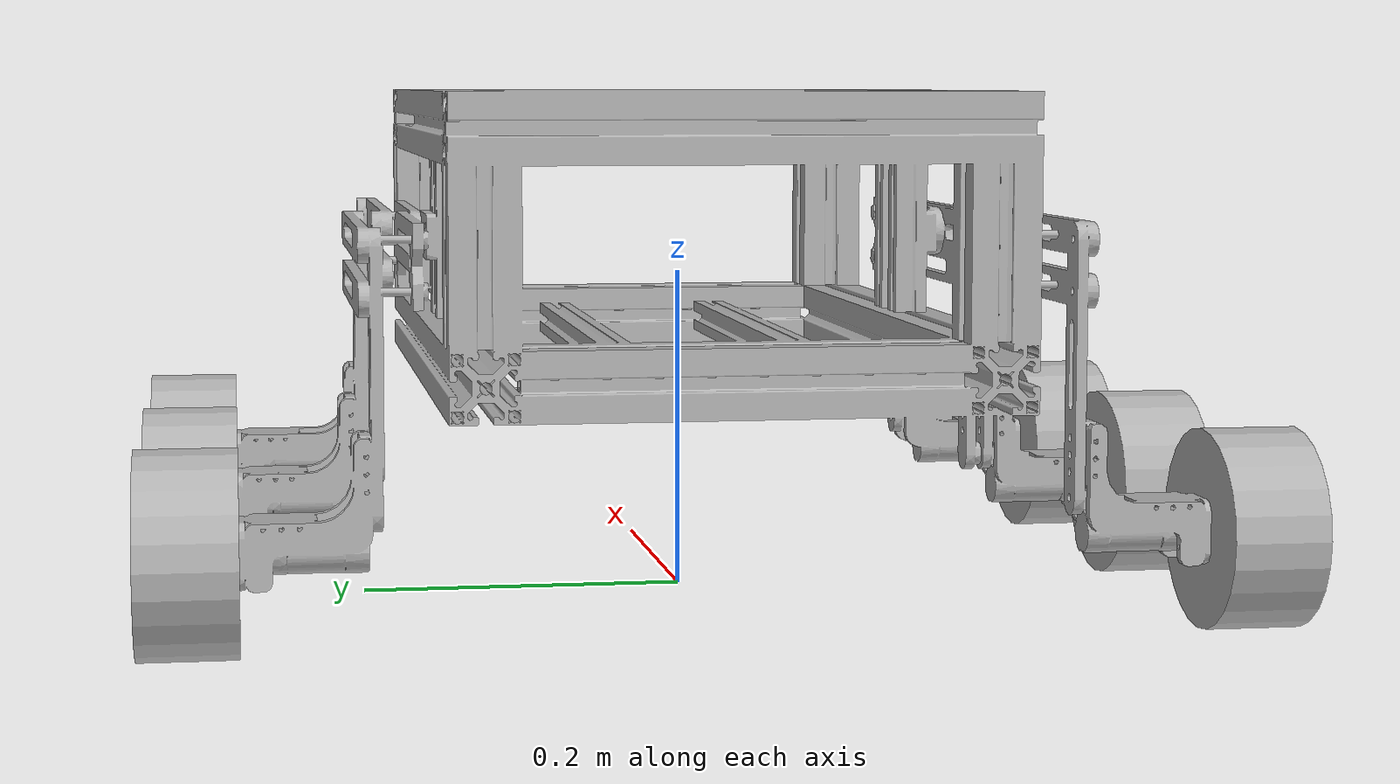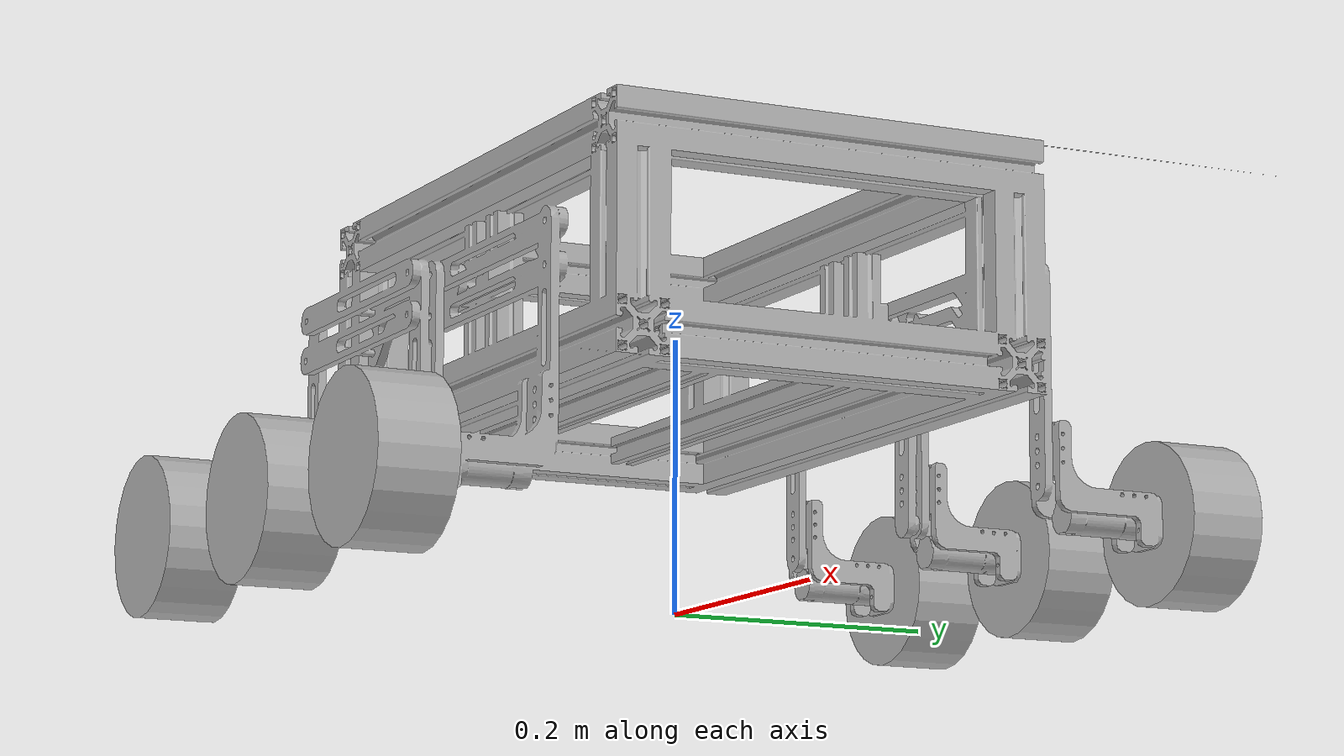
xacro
<?xml version="1.0" ?>
<robot name="skid_steer" xmlns:xacro="http://www.ros.org/wiki/xacro">
  <xacro:arg name="is_gazebo_ign" default="true"/>
  <xacro:include filename="$(find skid_steer_description)/urdf/materials.xacro" />
  <xacro:include filename="$(find skid_steer_description)/urdf/common_properties.xacro" />
  <xacro:include filename="$(find skid_steer_description)/urdf/skid_steer_control.xacro" />
  <xacro:include filename="$(find skid_steer_description)/urdf/skid_steer_gazebo.xacro" />
        <!-- AQUI EMPIEZA EL base_link Y BASE -->
    <link name="base_footprint"/>
    <link name="base_link">
      <inertial>
        <origin xyz="0 0 0" rpy="0 0 0"/>
        <mass value="18"/>
        <inertia ixx="0.104" iyy="0.118" izz="0.176" ixy="0.0" iyz="0.0" ixz="0.0"/>
      </inertial>
      <visual>
        <origin xyz="0 0 0" rpy="0 0 0"/>
        <geometry>
          <mesh filename="file://$(find skid_steer_description)/meshes/chasis_skid_steer_V2.stl" scale="0.001 0.001 0.001"/>
        </geometry>
        <material name="silver"/>
      </visual>
      <collision>
        <origin xyz="0 0 0" rpy="0 0 0"/>
        <geometry>
          <mesh filename="file://$(find skid_steer_description)/meshes/chasis_skid_steer_V2.stl" scale="0.001 0.001 0.001"/>
        </geometry>
      </collision>
    </link>

    <joint name="base_joint" type="fixed">
            <parent link="base_footprint" />
            <child link="base_link" />
            <origin xyz="0 0 ${0.165 + (0.118/2.0)}" rpy="0 0 0" />
    </joint>

    <!-- AQUI TERMINA EL base_link Y base_footprint -->

        <!-- AQUI EMPIEZAN LAS LLANTAS DERECHAS -->
    <link name="right_front_wheel_link">
      <inertial>
        <origin xyz="0 0 0" rpy="0 0 0"/>
        <mass value="0.140"/>
        <inertia ixx="0.0001" iyy="0.001" izz="0.001" ixy="0.0" iyz="0.0" ixz="0.0"/>
      </inertial>
      <visual>
        <origin xyz="0 -${0.057/2} 0" rpy="${pi/2} 0 0"/>
        <geometry>
          <cylinder radius="${0.118/2}" length="${0.057}" />
        </geometry>
        <material name="silver"/>
      </visual>
      <collision>
        <origin xyz="0 -${0.057/2} 0" rpy="${pi/2} 0 0"/>
        <geometry>
          <cylinder radius="${0.118/2}" length="${0.057}" />    </geometry>
      </collision>
    </link>

    <link name="right_mid_wheel_link">
      <inertial>
        <origin xyz="0 0 0" rpy="0 0 0"/>
        <mass value="0.140"/>
        <inertia ixx="0.0001" iyy="0.001" izz="0.001" ixy="0.0" iyz="0.0" ixz="0.0"/>
      </inertial>
      <visual>
        <origin xyz="0 -${0.057/2} 0" rpy="${pi/2} 0 0"/>
        <geometry>
          <cylinder radius="${0.118/2}" length="${0.057}" />
        </geometry>
        <material name="silver"/>
      </visual>
      <collision>
        <origin xyz="0 -${0.057/2} 0" rpy="${pi/2} 0 0"/>
        <geometry>
          <cylinder radius="${0.118/2}" length="${0.057}" />    </geometry>
      </collision>
    </link>

    <link name="right_back_wheel_link">
      <inertial>
        <origin xyz="0 0 0" rpy="0 0 0"/>
        <mass value="0.140"/>
        <inertia ixx="0.0001" iyy="0.001" izz="0.001" ixy="0.0" iyz="0.0" ixz="0.0"/>
      </inertial>
      <visual>
        <origin xyz="0 -${0.057/2} 0" rpy="${pi/2} 0 0"/>
        <geometry>
          <cylinder radius="${0.118/2}" length="${0.057}" />
        </geometry>
        <material name="silver"/>
      </visual>
      <collision>
        <origin xyz="0 -${0.057/2} 0" rpy="${pi/2} 0 0"/>
        <geometry>
          <cylinder radius="${0.118/2}" length="${0.057}" />    </geometry>
      </collision>
    </link>

    <joint name="base_right_front_wheel_joint" type="continuous">
            <parent link="base_link" />
            <child link="right_front_wheel_link" />
            <origin xyz="0.190 -0.278225 -0.165" rpy="0 0 0" />
            <axis xyz="0 1 0" />
    </joint>
    <joint name="base_right_mid_wheel_joint" type="continuous">
            <parent link="base_link" />
            <child link="right_mid_wheel_link" />
            <origin xyz="0 -0.278225 -0.165" rpy="0 0 0" />
            <axis xyz="0 1 0" />
    </joint>
    <joint name="base_right_back_wheel_joint" type="continuous">
            <parent link="base_link" />
            <child link="right_back_wheel_link" />
            <origin xyz="-0.190 -0.278225 -0.165" rpy="0 0 0" />
            <axis xyz="0 1 0" />
    </joint>
    <!-- AQUI TERMINAN LAS LLANTAS DERECHAS -->

    <!-- AQUI EMPIEZAN LAS LLANTAS IZQUIERDAS -->
    <link name="left_front_wheel_link">
      <inertial>
        <origin xyz="0 0 0" rpy="0 0 0"/>
        <mass value="0.140"/>
        <inertia ixx="0.0001" iyy="0.001" izz="0.001" ixy="0.0" iyz="0.0" ixz="0.0"/>
      </inertial>
      <visual>
        <origin xyz="0 ${0.057/2} 0" rpy="${pi/2} 0 0"/>
        <geometry>
          <cylinder radius="${0.118/2}" length="${0.057}" />
        </geometry>
        <material name="silver"/>
      </visual>
      <collision>
        <origin xyz="0 ${0.057/2} 0" rpy="${pi/2} 0 0"/>
        <geometry>
          <cylinder radius="${0.118/2}" length="${0.057}" />    </geometry>
      </collision>
    </link>

    <link name="left_mid_wheel_link">
      <inertial>
        <origin xyz="0 0 0" rpy="0 0 0"/>
        <mass value="0.140"/>
        <inertia ixx="0.0001" iyy="0.001" izz="0.001" ixy="0.0" iyz="0.0" ixz="0.0"/>
      </inertial>
      <visual>
        <origin xyz="0 ${0.057/2} 0" rpy="${pi/2} 0 0"/>
        <geometry>
          <cylinder radius="${0.118/2}" length="${0.057}" />
        </geometry>
        <material name="silver"/>
      </visual>
      <collision>
        <origin xyz="0 ${0.057/2} 0" rpy="${pi/2} 0 0"/>
        <geometry>
          <cylinder radius="${0.118/2}" length="${0.057}" />    </geometry>
      </collision>
    </link>

    <link name="left_back_wheel_link">
      <inertial>
        <origin xyz="0 0 0" rpy="0 0 0"/>
        <mass value="0.140"/>
        <inertia ixx="0.0001" iyy="0.001" izz="0.001" ixy="0.0" iyz="0.0" ixz="0.0"/>
      </inertial>
      <visual>
        <origin xyz="0 ${0.057/2} 0" rpy="${pi/2} 0 0"/>
        <geometry>
          <cylinder radius="${0.118/2}" length="${0.057}" />
        </geometry>
        <material name="silver"/>
      </visual>
      <collision>
        <origin xyz="0 ${0.057/2} 0" rpy="${pi/2} 0 0"/>
        <geometry>
          <cylinder radius="${0.118/2}" length="${0.057}" />    </geometry>
      </collision>
    </link>

    <joint name="base_left_front_wheel_joint" type="continuous">
            <parent link="base_link" />
            <child link="left_front_wheel_link" />
            <origin xyz="0.190 0.278225 -0.165" rpy="0 0 0" />
            <axis xyz="0 1 0" />
    </joint>
    <joint name="base_left_mid_wheel_joint" type="continuous">
            <parent link="base_link" />
            <child link="left_mid_wheel_link" />
            <origin xyz="0 0.278225 -0.165" rpy="0 0 0" />
            <axis xyz="0 1 0" />
    </joint>
    <joint name="base_left_back_wheel_joint" type="continuous">
            <parent link="base_link" />
            <child link="left_back_wheel_link" />
            <origin xyz="-0.190 0.278225 -0.165" rpy="0 0 0" />
            <axis xyz="0 1 0" />
    </joint>

    <!-- AQUI TERMINAN LAS LLANTAS IZQUIERDAS -->

</robot>

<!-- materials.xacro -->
<robot name="skid_steer" xmlns:xacro="http://www.ros.org/wiki/xacro" >

<material name="silver">
  <color rgba="0.700 0.700 0.700 1.000"/>
</material>

</robot>

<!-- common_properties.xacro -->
<robot xmlns:xacro="http://www.ros.org/wiki/xacro">

    <material name="red">
            <color rgba="1 0 0 1" />
    </material>
    <material name="blue">
        <color rgba="0 0 1 1" />
    </material>
    <material name="green">
        <color rgba="0 1 0 1" />
    </material>
    <material name="pink">
        <color rgba="1 0.2 0.7 1" />
    </material>
    <material name="orange">
        <color rgba="1 0.5 0 1" />
    </material>
    <material name="yellow">
        <color rgba="1 1 0 1" />
    </material>

    <xacro:macro name="box_inertia" params="m l w h xyz rpy">
        <inertial>
            <origin xyz="${xyz}" rpy="${rpy}" />
            <mass value="${m}" />
            <inertia ixx="${(m/12) * (h*h + l*l)}" ixy="0" ixz="0"
                     iyy="${(m/12) * (w*w + l*l)}" iyz="0"
                     izz="${(m/12) * (w*w + h*h)}" />
        </inertial>
    </xacro:macro>

    <xacro:macro name="cylinder_inertia" params="m r h xyz rpy">
        <inertial>
            <origin xyz="${xyz}" rpy="${rpy}" />
            <mass value="${m}" />
            <inertia ixx="${(m/12) * (3*r*r + h*h)}" ixy="0" ixz="0"
                     iyy="${(m/12) * (3*r*r + h*h)}" iyz="0"
                     izz="${(m/2) * (r*r)}" />
        </inertial>
    </xacro:macro>
</robot>
